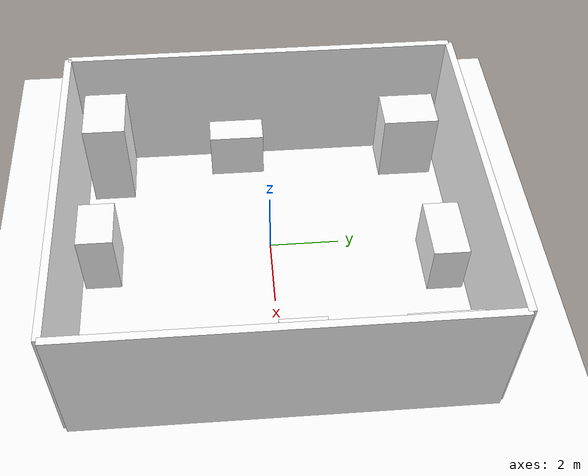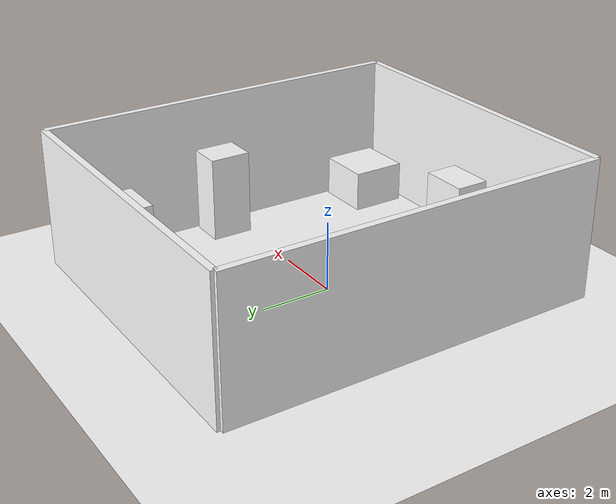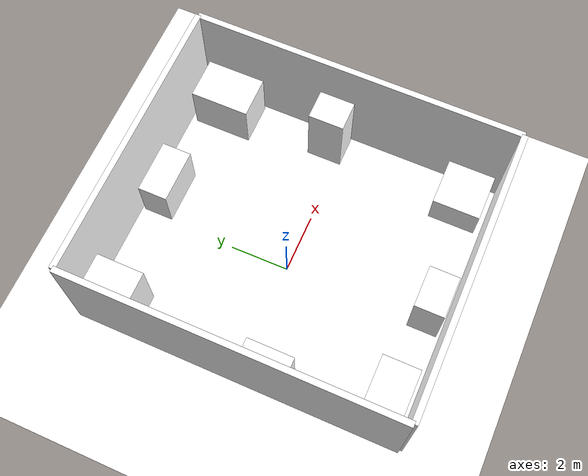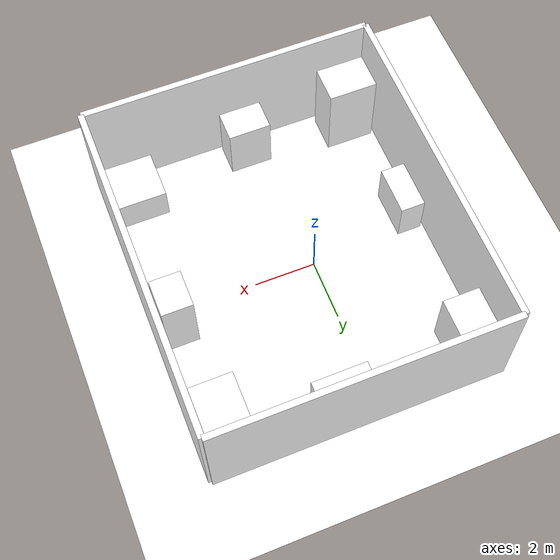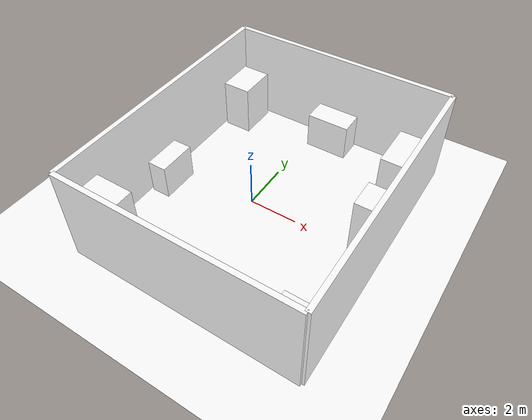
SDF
<?xml version="1.0" encoding="UTF-8"?>
<sdf version="1.9">
  <world name="texlevels_b">
    <physics type="ode">
      <max_step_size>0.004</max_step_size>
      <real_time_factor>1.0</real_time_factor>
      <real_time_update_rate>250</real_time_update_rate>
    </physics>
    <gravity>0 0 -9.81</gravity>
    <magnetic_field>6e-06 2.3e-05 -4.2e-05</magnetic_field>
    <atmosphere type="adiabatic"/>
    <scene>
      <grid>false</grid>
      <ambient>0.4 0.4 0.4 1</ambient>
      <background>0.7 0.7 0.7 1</background>
      <shadows>false</shadows>
    </scene>
    <include>
      <uri>model://texlevels_b_scene</uri>
      <name>texlevels_b_scene</name>
      <pose>0 0 0 0 0 0</pose>
    </include>
    <light name="sunUTC" type="directional">
      <pose>0 0 500 0 -0 0</pose>
      <cast_shadows>true</cast_shadows>
      <intensity>1</intensity>
      <direction>0.001 0.625 -0.78</direction>
      <diffuse>0.904 0.904 0.904 1</diffuse>
      <specular>0.271 0.271 0.271 1</specular>
      <attenuation><range>2000</range><linear>0</linear><constant>1</constant><quadratic>0</quadratic></attenuation>
      <spot><inner_angle>0</inner_angle><outer_angle>0</outer_angle><falloff>0</falloff></spot>
    </light>
    <spherical_coordinates>
      <surface_model>EARTH_WGS84</surface_model>
      <world_frame_orientation>ENU</world_frame_orientation>
      <latitude_deg>47.397971057728974</latitude_deg>
      <longitude_deg> 8.546163739800146</longitude_deg>
      <elevation>0</elevation>
    </spherical_coordinates>
  </world>
</sdf>

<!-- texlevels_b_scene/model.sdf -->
<!-- GENERATED by docker/sim/tools/gen_validation_world.py -- do not edit. -->
<sdf version="1.9">
  <model name="texlevels_b_scene">
    <static>true</static>
    <link name="ground">
      <collision name="c"><geometry><plane><normal>0 0 1</normal><size>40 40</size></plane></geometry></collision>
      <visual name="v">
        <geometry><plane><normal>0 0 1</normal><size>16 16</size></plane></geometry>
        <material>
          <diffuse>1 1 1 1</diffuse>
          <emissive>0.55 0.55 0.55 1</emissive>
          <pbr><metal>
            <albedo_map>model://texlevels_b_scene/materials/textures/ground.png</albedo_map>
            <emissive_map>model://texlevels_b_scene/materials/textures/ground.png</emissive_map>
            <metalness>0.0</metalness><roughness>1.0</roughness>
          </metal></pbr>
        </material>
      </visual>
    </link>
    <link name="wall_w">
      <pose>-4.0 0.0 2.0 0 0 0</pose>
      <collision name="c"><geometry><box><size>0.2 11.0 4.0</size></box></geometry></collision>
      <visual name="v">
        <geometry><box><size>0.2 11.0 4.0</size></box></geometry>
        <material>
          <diffuse>1 1 1 1</diffuse>
          <emissive>0.55 0.55 0.55 1</emissive>
          <pbr><metal>
            <albedo_map>model://texlevels_b_scene/materials/textures/wall_w.png</albedo_map>
            <emissive_map>model://texlevels_b_scene/materials/textures/wall_w.png</emissive_map>
            <metalness>0.0</metalness><roughness>1.0</roughness>
          </metal></pbr>
        </material>
      </visual>
    </link>
    <link name="wall_e">
      <pose>5.5 0.0 2.0 0 0 0</pose>
      <collision name="c"><geometry><box><size>0.2 11.0 4.0</size></box></geometry></collision>
      <visual name="v">
        <geometry><box><size>0.2 11.0 4.0</size></box></geometry>
        <material>
          <diffuse>1 1 1 1</diffuse>
          <emissive>0.55 0.55 0.55 1</emissive>
          <pbr><metal>
            <albedo_map>model://texlevels_b_scene/materials/textures/wall_e.png</albedo_map>
            <emissive_map>model://texlevels_b_scene/materials/textures/wall_e.png</emissive_map>
            <metalness>0.0</metalness><roughness>1.0</roughness>
          </metal></pbr>
        </material>
      </visual>
    </link>
    <link name="wall_s">
      <pose>0.75 -5.5 2.0 0 0 0</pose>
      <collision name="c"><geometry><box><size>9.5 0.2 4.0</size></box></geometry></collision>
      <visual name="v">
        <geometry><box><size>9.5 0.2 4.0</size></box></geometry>
        <material>
          <diffuse>1 1 1 1</diffuse>
          <emissive>0.55 0.55 0.55 1</emissive>
          <pbr><metal>
            <albedo_map>model://texlevels_b_scene/materials/textures/wall_s.png</albedo_map>
            <emissive_map>model://texlevels_b_scene/materials/textures/wall_s.png</emissive_map>
            <metalness>0.0</metalness><roughness>1.0</roughness>
          </metal></pbr>
        </material>
      </visual>
    </link>
    <link name="wall_n">
      <pose>0.75 5.5 2.0 0 0 0</pose>
      <collision name="c"><geometry><box><size>9.5 0.2 4.0</size></box></geometry></collision>
      <visual name="v">
        <geometry><box><size>9.5 0.2 4.0</size></box></geometry>
        <material>
          <diffuse>1 1 1 1</diffuse>
          <emissive>0.55 0.55 0.55 1</emissive>
          <pbr><metal>
            <albedo_map>model://texlevels_b_scene/materials/textures/wall_n.png</albedo_map>
            <emissive_map>model://texlevels_b_scene/materials/textures/wall_n.png</emissive_map>
            <metalness>0.0</metalness><roughness>1.0</roughness>
          </metal></pbr>
        </material>
      </visual>
    </link>
    <link name="box_ne">
      <pose>4.6 4.2 0.9 0 0 0</pose>
      <collision name="c"><geometry><box><size>1.4 2.0 1.8</size></box></geometry></collision>
      <visual name="v">
        <geometry><box><size>1.4 2.0 1.8</size></box></geometry>
        <material>
          <diffuse>1 1 1 1</diffuse>
          <emissive>0.55 0.55 0.55 1</emissive>
          <pbr><metal>
            <albedo_map>model://texlevels_b_scene/materials/textures/box_ne.png</albedo_map>
            <emissive_map>model://texlevels_b_scene/materials/textures/box_ne.png</emissive_map>
            <metalness>0.0</metalness><roughness>1.0</roughness>
          </metal></pbr>
        </material>
      </visual>
    </link>
    <link name="box_e">
      <pose>4.8 0.5 1.25 0 0 0</pose>
      <collision name="c"><geometry><box><size>1.0 1.2 2.5</size></box></geometry></collision>
      <visual name="v">
        <geometry><box><size>1.0 1.2 2.5</size></box></geometry>
        <material>
          <diffuse>1 1 1 1</diffuse>
          <emissive>0.55 0.55 0.55 1</emissive>
          <pbr><metal>
            <albedo_map>model://texlevels_b_scene/materials/textures/box_e.png</albedo_map>
            <emissive_map>model://texlevels_b_scene/materials/textures/box_e.png</emissive_map>
            <metalness>0.0</metalness><roughness>1.0</roughness>
          </metal></pbr>
        </material>
      </visual>
    </link>
    <link name="box_se">
      <pose>4.5 -4.4 0.6 0 0 0</pose>
      <collision name="c"><geometry><box><size>1.6 1.6 1.2</size></box></geometry></collision>
      <visual name="v">
        <geometry><box><size>1.6 1.6 1.2</size></box></geometry>
        <material>
          <diffuse>1 1 1 1</diffuse>
          <emissive>0.55 0.55 0.55 1</emissive>
          <pbr><metal>
            <albedo_map>model://texlevels_b_scene/materials/textures/box_se.png</albedo_map>
            <emissive_map>model://texlevels_b_scene/materials/textures/box_se.png</emissive_map>
            <metalness>0.0</metalness><roughness>1.0</roughness>
          </metal></pbr>
        </material>
      </visual>
    </link>
    <link name="box_nw">
      <pose>-3.2 4.4 1.1 0 0 0</pose>
      <collision name="c"><geometry><box><size>1.2 1.6 2.2</size></box></geometry></collision>
      <visual name="v">
        <geometry><box><size>1.2 1.6 2.2</size></box></geometry>
        <material>
          <diffuse>1 1 1 1</diffuse>
          <emissive>0.55 0.55 0.55 1</emissive>
          <pbr><metal>
            <albedo_map>model://texlevels_b_scene/materials/textures/box_nw.png</albedo_map>
            <emissive_map>model://texlevels_b_scene/materials/textures/box_nw.png</emissive_map>
            <metalness>0.0</metalness><roughness>1.0</roughness>
          </metal></pbr>
        </material>
      </visual>
    </link>
    <link name="box_w">
      <pose>-3.4 -0.8 0.75 0 0 0</pose>
      <collision name="c"><geometry><box><size>0.8 1.6 1.5</size></box></geometry></collision>
      <visual name="v">
        <geometry><box><size>0.8 1.6 1.5</size></box></geometry>
        <material>
          <diffuse>1 1 1 1</diffuse>
          <emissive>0.55 0.55 0.55 1</emissive>
          <pbr><metal>
            <albedo_map>model://texlevels_b_scene/materials/textures/box_w.png</albedo_map>
            <emissive_map>model://texlevels_b_scene/materials/textures/box_w.png</emissive_map>
            <metalness>0.0</metalness><roughness>1.0</roughness>
          </metal></pbr>
        </material>
      </visual>
    </link>
    <link name="box_sw">
      <pose>-3.0 -4.6 1.4 0 0 0</pose>
      <collision name="c"><geometry><box><size>1.6 1.2 2.8</size></box></geometry></collision>
      <visual name="v">
        <geometry><box><size>1.6 1.2 2.8</size></box></geometry>
        <material>
          <diffuse>1 1 1 1</diffuse>
          <emissive>0.55 0.55 0.55 1</emissive>
          <pbr><metal>
            <albedo_map>model://texlevels_b_scene/materials/textures/box_sw.png</albedo_map>
            <emissive_map>model://texlevels_b_scene/materials/textures/box_sw.png</emissive_map>
            <metalness>0.0</metalness><roughness>1.0</roughness>
          </metal></pbr>
        </material>
      </visual>
    </link>
    <link name="box_n">
      <pose>1.0 4.8 0.8 0 0 0</pose>
      <collision name="c"><geometry><box><size>1.8 1.0 1.6</size></box></geometry></collision>
      <visual name="v">
        <geometry><box><size>1.8 1.0 1.6</size></box></geometry>
        <material>
          <diffuse>1 1 1 1</diffuse>
          <emissive>0.55 0.55 0.55 1</emissive>
          <pbr><metal>
            <albedo_map>model://texlevels_b_scene/materials/textures/box_n.png</albedo_map>
            <emissive_map>model://texlevels_b_scene/materials/textures/box_n.png</emissive_map>
            <metalness>0.0</metalness><roughness>1.0</roughness>
          </metal></pbr>
        </material>
      </visual>
    </link>
    <link name="box_s">
      <pose>0.5 -4.8 1.0 0 0 0</pose>
      <collision name="c"><geometry><box><size>1.4 1.0 2.0</size></box></geometry></collision>
      <visual name="v">
        <geometry><box><size>1.4 1.0 2.0</size></box></geometry>
        <material>
          <diffuse>1 1 1 1</diffuse>
          <emissive>0.55 0.55 0.55 1</emissive>
          <pbr><metal>
            <albedo_map>model://texlevels_b_scene/materials/textures/box_s.png</albedo_map>
            <emissive_map>model://texlevels_b_scene/materials/textures/box_s.png</emissive_map>
            <metalness>0.0</metalness><roughness>1.0</roughness>
          </metal></pbr>
        </material>
      </visual>
    </link>
  </model>
</sdf>
